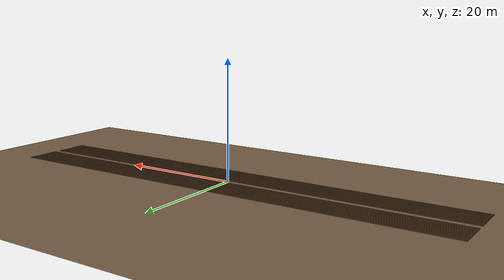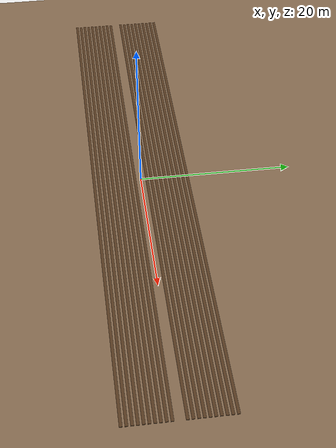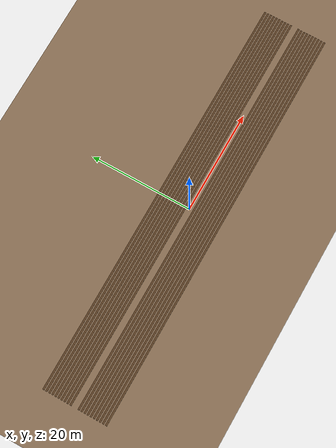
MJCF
<?xml version="1.0" encoding="utf-8"?>
<mujoco model="amiga_like_modular">
  <!-- Change timestep at own risk. -->
  <option timestep="0.002" gravity="0 0 -9.81" integrator="RK4"/>
  <size nkey="256" nuser_sensor="1"/>
  <visual>
    <global offwidth="1024" offheight="768"/>
  </visual>

  <default>
    <!-- Slightly grippy soil; tweak to taste. -->
    <geom condim="4" friction="1.2 0.02 0.002"/>
    <joint armature="0.0005" damping="0.1"/>
  </default>

  <asset>
    <texture type="skybox" builtin="gradient" rgb1=".75 .92 1.00" rgb2=".60 .85 1.00" width="512" height="512"/>
    <texture name="groundtex" type="2d" builtin="checker" rgb1=".55 .45 .35" rgb2=".45 .35 .25" width="1024" height="1024"/>
    <material name="groundmat" texture="groundtex" texrepeat="30 30" reflectance="0.05"/>

    <!-- Extra materials for crops/soil rows. -->
    <material name="rowsoil" texture="groundtex" texrepeat="40 40" rgba="0.65 0.55 0.40 1" reflectance="0.02"/>
    <material name="leaf"  rgba="0.20 0.65 0.20 1"/>
    <material name="stalk" rgba="0.22 0.55 0.22 1"/>
</asset>

  <worldbody>
    <!-- Light + floor so it’s bright and visible. -->
    <light name="sun" pos="2 2 5" dir="-0.4 -0.4 -1"
           diffuse="1 1 1" specular="0.1 0.1 0.1" ambient="0.65 0.65 0.65"
           directional="true" castshadow="false"/>
    <geom type="plane" size="50 50 1" material="groundmat"/>

    <!-- ===== Raised crop beds & plants (rotatable). ===== -->
    <body name="rows" pos="0 0 0">
      <joint name="rows_yaw" type="hinge" axis="0 0 1" limited="false"/>

      <!-- Long rows (80 m) in multiple lanes. -->
      <geom type="box" size="40 0.18 0.05" pos="0  0.80 0.05" material="rowsoil"/>
      <geom type="box" size="40 0.18 0.05" pos="0 -0.80 0.05" material="rowsoil"/>
      <geom type="box" size="40 0.18 0.05" pos="0  1.40 0.05" material="rowsoil"/>
      <geom type="box" size="40 0.18 0.05" pos="0 -1.40 0.05" material="rowsoil"/>
      <geom type="box" size="40 0.18 0.05" pos="0  2.00 0.05" material="rowsoil"/>
      <geom type="box" size="40 0.18 0.05" pos="0 -2.00 0.05" material="rowsoil"/>
      <geom type="box" size="40 0.18 0.05" pos="0  2.60 0.05" material="rowsoil"/>
      <geom type="box" size="40 0.18 0.05" pos="0 -2.60 0.05" material="rowsoil"/>
      <geom type="box" size="40 0.18 0.05" pos="0  3.20 0.05" material="rowsoil"/>
      <geom type="box" size="40 0.18 0.05" pos="0 -3.20 0.05" material="rowsoil"/>

      <!-- Extra right-side rows (negative Y) to fill FOV. -->
      <geom type="box" size="40 0.18 0.05" pos="0 -3.80 0.05" material="rowsoil"/>
      <geom type="box" size="40 0.18 0.05" pos="0 -4.40 0.05" material="rowsoil"/>
      <geom type="box" size="40 0.18 0.05" pos="0 -5.00 0.05" material="rowsoil"/>
      <geom type="box" size="40 0.18 0.05" pos="0 -5.60 0.05" material="rowsoil"/>
      <geom type="box" size="40 0.18 0.05" pos="0 -6.20 0.05" material="rowsoil"/>

      <!-- Extra left/visible side rows (+Y). -->
      <geom type="box" size="40 0.18 0.05" pos="0  3.80 0.05" material="rowsoil"/>
      <geom type="box" size="40 0.18 0.05" pos="0  4.40 0.05" material="rowsoil"/>
      <geom type="box" size="40 0.18 0.05" pos="0  5.00 0.05" material="rowsoil"/>
      <geom type="box" size="40 0.18 0.05" pos="0  5.60 0.05" material="rowsoil"/>
      <geom type="box" size="40 0.18 0.05" pos="0  6.20 0.05" material="rowsoil"/>
    </body>
  </worldbody>

  <!-- Actuators and Sensors defined in get_mujoco_xml(). -->
  <actuator>
  </actuator>

  <sensor>
  </sensor>
</mujoco>
